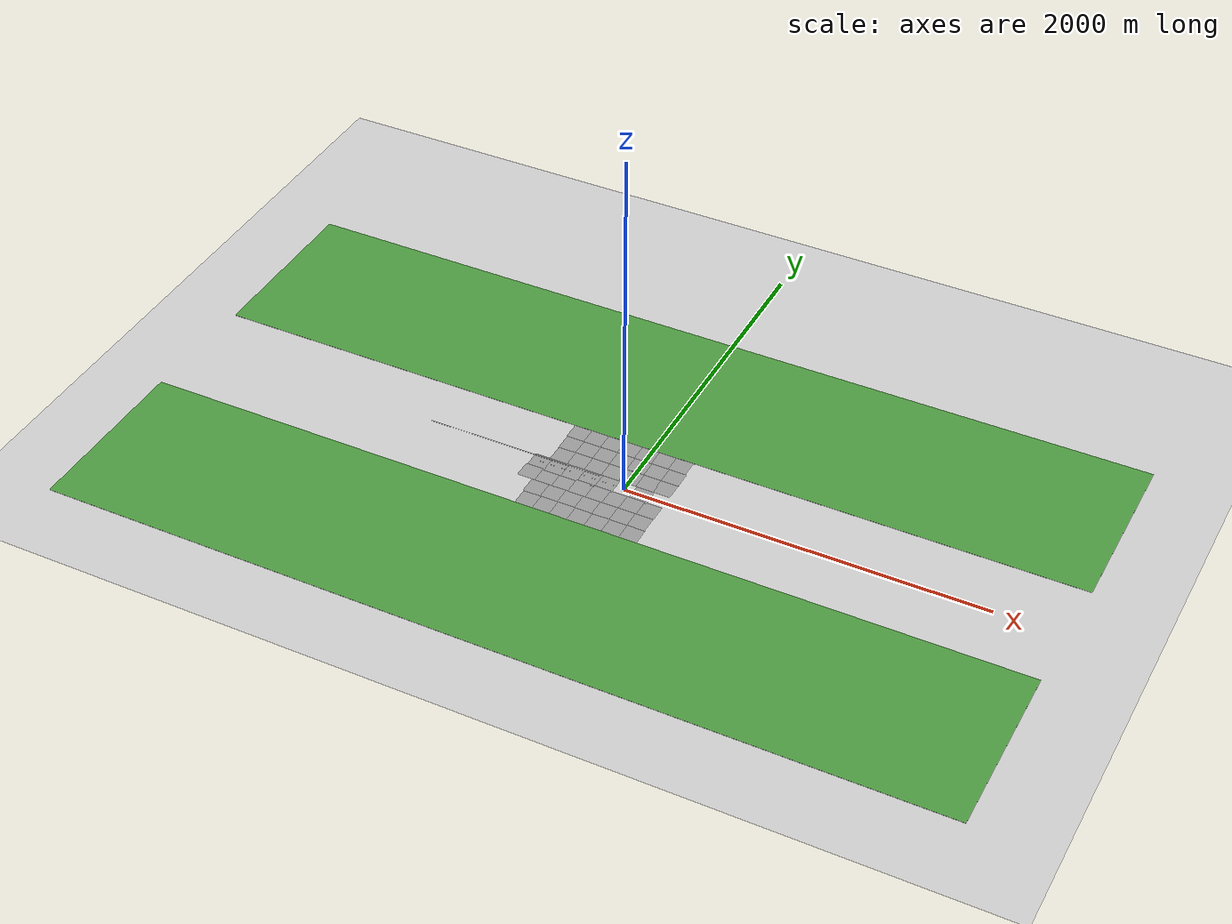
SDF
<sdf version="1.7">
 <world name="default">
  <model name="ground_plane">
   <static>1</static>
   <link name="link">
    <collision name="collision">
     <geometry><plane><normal>0 0 1</normal><size>100 100</size></plane></geometry>
     <surface><friction><ode><mu>100</mu><mu2>50</mu2></ode></friction></surface>
    </collision>
    <visual name="visual">
     <cast_shadows>0</cast_shadows>
     <geometry><plane><normal>0 0 1</normal><size>100 100</size></plane></geometry>
     <material>
      <script><uri>file://media/materials/scripts/gazebo.material</uri><name>Gazebo/Grey</name></script>
     </material>
    </visual>
   </link>
  </model>
  <model name="ground_plane_0">
   <static>1</static>
   <link name="link">
    <collision name="collision">
     <geometry><plane><normal>0 0 1</normal><size>100 100</size></plane></geometry>
     <surface>
      <contact><collide_bitmask>65535</collide_bitmask></contact>
      <friction><ode><mu>100</mu><mu2>50</mu2></ode></friction>
     </surface>
    </collision>
    <visual name="visual">
     <cast_shadows>0</cast_shadows>
     <geometry><plane><normal>0 0 1</normal><size>100 100</size></plane></geometry>
     <material>
      <script><uri>file://media/materials/scripts/gazebo.material</uri><name>Gazebo/Grey</name></script>
     </material>
    </visual>
   </link>
   <pose>98.6274 -0.038647 0 0 -0 0</pose>
  </model>
  <model name="ground_plane_5">
   <static>1</static>
   <link name="link">
    <collision name="collision">
     <geometry><plane><normal>0 0 1</normal><size>100 100</size></plane></geometry>
     <surface>
      <contact><collide_bitmask>65535</collide_bitmask></contact>
      <friction><ode><mu>100</mu><mu2>50</mu2></ode></friction>
     </surface>
    </collision>
    <visual name="visual">
     <cast_shadows>0</cast_shadows>
     <geometry><plane><normal>0 0 1</normal><size>100 100</size></plane></geometry>
     <material>
      <script><uri>file://media/materials/scripts/gazebo.material</uri><name>Gazebo/Grey</name></script>
     </material>
    </visual>
   </link>
   <pose>-99.9513 0.00012 0 0 -0 0</pose>
  </model>
  <model name="ground_plane_6">
   <static>1</static>
   <link name="link">
    <collision name="collision">
     <geometry><plane><normal>0 0 1</normal><size>100 100</size></plane></geometry>
     <surface>
      <contact><collide_bitmask>65535</collide_bitmask></contact>
      <friction><ode><mu>100</mu><mu2>50</mu2></ode></friction>
     </surface>
    </collision>
    <visual name="visual">
     <cast_shadows>0</cast_shadows>
     <geometry><plane><normal>0 0 1</normal><size>100 100</size></plane></geometry>
     <material>
      <script><uri>file://media/materials/scripts/gazebo.material</uri><name>Gazebo/Grey</name></script>
     </material>
    </visual>
   </link>
   <pose>-199.166 0.057176 0 0 -0 0</pose>
  </model>
  <model name="ground_plane_7">
   <static>1</static>
   <link name="link">
    <collision name="collision">
     <geometry><plane><normal>0 0 1</normal><size>100 100</size></plane></geometry>
     <surface>
      <contact><collide_bitmask>65535</collide_bitmask></contact>
      <friction><ode><mu>100</mu><mu2>50</mu2></ode></friction>
     </surface>
    </collision>
    <visual name="visual">
     <cast_shadows>0</cast_shadows>
     <geometry><plane><normal>0 0 1</normal><size>100 100</size></plane></geometry>
     <material>
      <script><uri>file://media/materials/scripts/gazebo.material</uri><name>Gazebo/Grey</name></script>
     </material>
    </visual>
   </link>
   <pose>-297.406 0.070305 0 0 -0 0</pose>
  </model>
  <model name="ground_plane_8">
   <static>1</static>
   <link name="link">
    <collision name="collision">
     <geometry><plane><normal>0 0 1</normal><size>100 100</size></plane></geometry>
     <surface>
      <contact><collide_bitmask>65535</collide_bitmask></contact>
      <friction><ode><mu>100</mu><mu2>50</mu2></ode></friction>
     </surface>
    </collision>
    <visual name="visual">
     <cast_shadows>0</cast_shadows>
     <geometry><plane><normal>0 0 1</normal><size>100 100</size></plane></geometry>
     <material>
      <script><uri>file://media/materials/scripts/gazebo.material</uri><name>Gazebo/Grey</name></script>
     </material>
    </visual>
   </link>
   <pose>-394.201 0.105452 0 0 -0 0</pose>
  </model>
  <model name="ground_plane_9">
   <static>1</static>
   <link name="link">
    <collision name="collision">
     <geometry><plane><normal>0 0 1</normal><size>100 100</size></plane></geometry>
     <surface>
      <contact><collide_bitmask>65535</collide_bitmask></contact>
      <friction><ode><mu>100</mu><mu2>50</mu2></ode></friction>
     </surface>
    </collision>
    <visual name="visual">
     <cast_shadows>0</cast_shadows>
     <geometry><plane><normal>0 0 1</normal><size>100 100</size></plane></geometry>
     <material>
      <script><uri>file://media/materials/scripts/gazebo.material</uri><name>Gazebo/Grey</name></script>
     </material>
    </visual>
   </link>
   <pose>-491.857 0.172089 0 0 -0 0</pose>
  </model>
  <model name="ground_plane_12">
   <static>1</static>
   <link name="link">
    <collision name="collision">
     <geometry><plane><normal>0 0 1</normal><size>100 100</size></plane></geometry>
     <surface>
      <contact><collide_bitmask>65535</collide_bitmask></contact>
      <friction><ode><mu>100</mu><mu2>50</mu2></ode></friction>
     </surface>
    </collision>
    <visual name="visual">
     <cast_shadows>0</cast_shadows>
     <geometry><plane><normal>0 0 1</normal><size>100 100</size></plane></geometry>
     <material>
      <script><uri>file://media/materials/scripts/gazebo.material</uri><name>Gazebo/Grey</name></script>
     </material>
    </visual>
   </link>
   <pose>-11.7816 -89.7768 0 0 -0 0</pose>
  </model>
  <model name="ground_plane_13">
   <static>1</static>
   <link name="link">
    <collision name="collision">
     <geometry><plane><normal>0 0 1</normal><size>100 100</size></plane></geometry>
     <surface>
      <contact><collide_bitmask>65535</collide_bitmask></contact>
      <friction><ode><mu>100</mu><mu2>50</mu2></ode></friction>
     </surface>
    </collision>
    <visual name="visual">
     <cast_shadows>0</cast_shadows>
     <geometry><plane><normal>0 0 1</normal><size>100 100</size></plane></geometry>
     <material>
      <script><uri>file://media/materials/scripts/gazebo.material</uri><name>Gazebo/Grey</name></script>
     </material>
    </visual>
   </link>
   <pose>86.8306 -89.8197 0 0 -0 0</pose>
  </model>
  <model name="ground_plane_14">
   <static>1</static>
   <link name="link">
    <collision name="collision">
     <geometry><plane><normal>0 0 1</normal><size>100 100</size></plane></geometry>
     <surface>
      <contact><collide_bitmask>65535</collide_bitmask></contact>
      <friction><ode><mu>100</mu><mu2>50</mu2></ode></friction>
     </surface>
    </collision>
    <visual name="visual">
     <cast_shadows>0</cast_shadows>
     <geometry><plane><normal>0 0 1</normal><size>100 100</size></plane></geometry>
     <material>
      <script><uri>file://media/materials/scripts/gazebo.material</uri><name>Gazebo/Grey</name></script>
     </material>
    </visual>
   </link>
   <pose>185.841 -89.9297 0 0 -0 0</pose>
  </model>
  <model name="ground_plane_19">
   <static>1</static>
   <link name="link">
    <collision name="collision">
     <geometry><plane><normal>0 0 1</normal><size>100 100</size></plane></geometry>
     <surface>
      <contact><collide_bitmask>65535</collide_bitmask></contact>
      <friction><ode><mu>100</mu><mu2>50</mu2></ode></friction>
     </surface>
    </collision>
    <visual name="visual">
     <cast_shadows>0</cast_shadows>
     <geometry><plane><normal>0 0 1</normal><size>100 100</size></plane></geometry>
     <material>
      <script><uri>file://media/materials/scripts/gazebo.material</uri><name>Gazebo/Grey</name></script>
     </material>
    </visual>
   </link>
   <pose>-108.415 -89.9777 0 0 -0 0</pose>
  </model>
  <model name="ground_plane_20">
   <static>1</static>
   <link name="link">
    <collision name="collision">
     <geometry><plane><normal>0 0 1</normal><size>100 100</size></plane></geometry>
     <surface>
      <contact><collide_bitmask>65535</collide_bitmask></contact>
      <friction><ode><mu>100</mu><mu2>50</mu2></ode></friction>
     </surface>
    </collision>
    <visual name="visual">
     <cast_shadows>0</cast_shadows>
     <geometry><plane><normal>0 0 1</normal><size>100 100</size></plane></geometry>
     <material>
      <script><uri>file://media/materials/scripts/gazebo.material</uri><name>Gazebo/Grey</name></script>
     </material>
    </visual>
   </link>
   <pose>-205.248 -89.9164 0 0 -0 0</pose>
  </model>
  <model name="ground_plane_21">
   <static>1</static>
   <link name="link">
    <collision name="collision">
     <geometry><plane><normal>0 0 1</normal><size>100 100</size></plane></geometry>
     <surface>
      <contact><collide_bitmask>65535</collide_bitmask></contact>
      <friction><ode><mu>100</mu><mu2>50</mu2></ode></friction>
     </surface>
    </collision>
    <visual name="visual">
     <cast_shadows>0</cast_shadows>
     <geometry><plane><normal>0 0 1</normal><size>100 100</size></plane></geometry>
     <material>
      <script><uri>file://media/materials/scripts/gazebo.material</uri><name>Gazebo/Grey</name></script>
     </material>
    </visual>
   </link>
   <pose>-301.464 -90.0316 0 0 -0 0</pose>
  </model>
  <model name="ground_plane_22">
   <static>1</static>
   <link name="link">
    <collision name="collision">
     <geometry><plane><normal>0 0 1</normal><size>100 100</size></plane></geometry>
     <surface>
      <contact><collide_bitmask>65535</collide_bitmask></contact>
      <friction><ode><mu>100</mu><mu2>50</mu2></ode></friction>
     </surface>
    </collision>
    <visual name="visual">
     <cast_shadows>0</cast_shadows>
     <geometry><plane><normal>0 0 1</normal><size>100 100</size></plane></geometry>
     <material>
      <script><uri>file://media/materials/scripts/gazebo.material</uri><name>Gazebo/Grey</name></script>
     </material>
    </visual>
   </link>
   <pose>-399.702 -89.9287 0 0 -0 0</pose>
  </model>
  <model name="ground_plane_23">
   <static>1</static>
   <link name="link">
    <collision name="collision">
     <geometry><plane><normal>0 0 1</normal><size>100 100</size></plane></geometry>
     <surface>
      <contact><collide_bitmask>65535</collide_bitmask></contact>
      <friction><ode><mu>100</mu><mu2>50</mu2></ode></friction>
     </surface>
    </collision>
    <visual name="visual">
     <cast_shadows>0</cast_shadows>
     <geometry><plane><normal>0 0 1</normal><size>100 100</size></plane></geometry>
     <material>
      <script><uri>file://media/materials/scripts/gazebo.material</uri><name>Gazebo/Grey</name></script>
     </material>
    </visual>
   </link>
   <pose>-498.907 -90.1441 0 0 -0 0</pose>
  </model>
  <model name="ground_plane_29">
   <static>1</static>
   <link name="link">
    <collision name="collision">
     <geometry><plane><normal>0 0 1</normal><size>100 100</size></plane></geometry>
     <surface>
      <contact><collide_bitmask>65535</collide_bitmask></contact>
      <friction><ode><mu>100</mu><mu2>50</mu2></ode></friction>
     </surface>
    </collision>
    <visual name="visual">
     <cast_shadows>0</cast_shadows>
     <geometry><plane><normal>0 0 1</normal><size>100 100</size></plane></geometry>
     <material>
      <script><uri>file://media/materials/scripts/gazebo.material</uri><name>Gazebo/Grey</name></script>
     </material>
    </visual>
   </link>
   <pose>185.337 100.068 0 0 -0 0</pose>
  </model>
  <model name="ground_plane_30">
   <static>1</static>
   <link name="link">
    <collision name="collision">
     <geometry><plane><normal>0 0 1</normal><size>100 100</size></plane></geometry>
     <surface>
      <contact><collide_bitmask>65535</collide_bitmask></contact>
      <friction><ode><mu>100</mu><mu2>50</mu2></ode></friction>
     </surface>
    </collision>
    <visual name="visual">
     <cast_shadows>0</cast_shadows>
     <geometry><plane><normal>0 0 1</normal><size>100 100</size></plane></geometry>
     <material>
      <script><uri>file://media/materials/scripts/gazebo.material</uri><name>Gazebo/Grey</name></script>
     </material>
    </visual>
   </link>
   <pose>90.569 99.9304 0 0 -0 0</pose>
  </model>
  <model name="ground_plane_31">
   <static>1</static>
   <link name="link">
    <collision name="collision">
     <geometry><plane><normal>0 0 1</normal><size>100 100</size></plane></geometry>
     <surface>
      <contact><collide_bitmask>65535</collide_bitmask></contact>
      <friction><ode><mu>100</mu><mu2>50</mu2></ode></friction>
     </surface>
    </collision>
    <visual name="visual">
     <cast_shadows>0</cast_shadows>
     <geometry><plane><normal>0 0 1</normal><size>100 100</size></plane></geometry>
     <material>
      <script><uri>file://media/materials/scripts/gazebo.material</uri><name>Gazebo/Grey</name></script>
     </material>
    </visual>
   </link>
   <pose>-9.31072 99.9603 0 0 -0 0</pose>
  </model>
  <model name="ground_plane_32">
   <static>1</static>
   <link name="link">
    <collision name="collision">
     <geometry><plane><normal>0 0 1</normal><size>100 100</size></plane></geometry>
     <surface>
      <contact><collide_bitmask>65535</collide_bitmask></contact>
      <friction><ode><mu>100</mu><mu2>50</mu2></ode></friction>
     </surface>
    </collision>
    <visual name="visual">
     <cast_shadows>0</cast_shadows>
     <geometry><plane><normal>0 0 1</normal><size>100 100</size></plane></geometry>
     <material>
      <script><uri>file://media/materials/scripts/gazebo.material</uri><name>Gazebo/Grey</name></script>
     </material>
    </visual>
   </link>
   <pose>-108.837 99.8776 0 0 -0 0</pose>
  </model>
  <model name="ground_plane_33">
   <static>1</static>
   <link name="link">
    <collision name="collision">
     <geometry><plane><normal>0 0 1</normal><size>100 100</size></plane></geometry>
     <surface>
      <contact><collide_bitmask>65535</collide_bitmask></contact>
      <friction><ode><mu>100</mu><mu2>50</mu2></ode></friction>
     </surface>
    </collision>
    <visual name="visual">
     <cast_shadows>0</cast_shadows>
     <geometry><plane><normal>0 0 1</normal><size>100 100</size></plane></geometry>
     <material>
      <script><uri>file://media/materials/scripts/gazebo.material</uri><name>Gazebo/Grey</name></script>
     </material>
    </visual>
   </link>
   <pose>-208.514 99.9253 0 0 -0 0</pose>
  </model>
  <model name="ground_plane_34">
   <static>1</static>
   <link name="link">
    <collision name="collision">
     <geometry><plane><normal>0 0 1</normal><size>100 100</size></plane></geometry>
     <surface>
      <contact><collide_bitmask>65535</collide_bitmask></contact>
      <friction><ode><mu>100</mu><mu2>50</mu2></ode></friction>
     </surface>
    </collision>
    <visual name="visual">
     <cast_shadows>0</cast_shadows>
     <geometry><plane><normal>0 0 1</normal><size>100 100</size></plane></geometry>
     <material>
      <script><uri>file://media/materials/scripts/gazebo.material</uri><name>Gazebo/Grey</name></script>
     </material>
    </visual>
   </link>
   <pose>-308.035 99.975 0 0 -0 0</pose>
  </model>
  <model name="ground_plane_35">
   <static>1</static>
   <link name="link">
    <collision name="collision">
     <geometry><plane><normal>0 0 1</normal><size>100 100</size></plane></geometry>
     <surface>
      <contact><collide_bitmask>65535</collide_bitmask></contact>
      <friction><ode><mu>100</mu><mu2>50</mu2></ode></friction>
     </surface>
    </collision>
    <visual name="visual">
     <cast_shadows>0</cast_shadows>
     <geometry><plane><normal>0 0 1</normal><size>100 100</size></plane></geometry>
     <material>
      <script><uri>file://media/materials/scripts/gazebo.material</uri><name>Gazebo/Grey</name></script>
     </material>
    </visual>
   </link>
   <pose>-407.885 99.9929 0 0 -0 0</pose>
  </model>
  <model name="ground_plane_50">
   <static>1</static>
   <link name="link">
    <collision name="collision">
     <geometry><plane><normal>0 0 1</normal><size>100 100</size></plane></geometry>
     <surface>
      <contact><collide_bitmask>65535</collide_bitmask></contact>
      <friction><ode><mu>100</mu><mu2>50</mu2></ode></friction>
     </surface>
    </collision>
    <visual name="visual">
     <cast_shadows>0</cast_shadows>
     <geometry><plane><normal>0 0 1</normal><size>100 100</size></plane></geometry>
     <material>
      <script><uri>file://media/materials/scripts/gazebo.material</uri><name>Gazebo/Grey</name></script>
     </material>
    </visual>
   </link>
   <pose>183.284 -189.234 0 0 -0 0</pose>
  </model>
  <model name="ground_plane_51">
   <static>1</static>
   <link name="link">
    <collision name="collision">
     <geometry><plane><normal>0 0 1</normal><size>100 100</size></plane></geometry>
     <surface>
      <contact><collide_bitmask>65535</collide_bitmask></contact>
      <friction><ode><mu>100</mu><mu2>50</mu2></ode></friction>
     </surface>
    </collision>
    <visual name="visual">
     <cast_shadows>0</cast_shadows>
     <geometry><plane><normal>0 0 1</normal><size>100 100</size></plane></geometry>
     <material>
      <script><uri>file://media/materials/scripts/gazebo.material</uri><name>Gazebo/Grey</name></script>
     </material>
    </visual>
   </link>
   <pose>83.2685 -189.583 0 0 -0 0</pose>
  </model>
  <model name="ground_plane_52">
   <static>1</static>
   <link name="link">
    <collision name="collision">
     <geometry><plane><normal>0 0 1</normal><size>100 100</size></plane></geometry>
     <surface>
      <contact><collide_bitmask>65535</collide_bitmask></contact>
      <friction><ode><mu>100</mu><mu2>50</mu2></ode></friction>
     </surface>
    </collision>
    <visual name="visual">
     <cast_shadows>0</cast_shadows>
     <geometry><plane><normal>0 0 1</normal><size>100 100</size></plane></geometry>
     <material>
      <script><uri>file://media/materials/scripts/gazebo.material</uri><name>Gazebo/Grey</name></script>
     </material>
    </visual>
   </link>
   <pose>-16.2945 -189.701 0 0 -0 0</pose>
  </model>
  <model name="ground_plane_53">
   <static>1</static>
   <link name="link">
    <collision name="collision">
     <geometry><plane><normal>0 0 1</normal><size>100 100</size></plane></geometry>
     <surface>
      <contact><collide_bitmask>65535</collide_bitmask></contact>
      <friction><ode><mu>100</mu><mu2>50</mu2></ode></friction>
     </surface>
    </collision>
    <visual name="visual">
     <cast_shadows>0</cast_shadows>
     <geometry><plane><normal>0 0 1</normal><size>100 100</size></plane></geometry>
     <material>
      <script><uri>file://media/materials/scripts/gazebo.material</uri><name>Gazebo/Grey</name></script>
     </material>
    </visual>
   </link>
   <pose>-115.105 -189.648 0 0 -0 0</pose>
  </model>
  <model name="ground_plane_54">
   <static>1</static>
   <link name="link">
    <collision name="collision">
     <geometry><plane><normal>0 0 1</normal><size>100 100</size></plane></geometry>
     <surface>
      <contact><collide_bitmask>65535</collide_bitmask></contact>
      <friction><ode><mu>100</mu><mu2>50</mu2></ode></friction>
     </surface>
    </collision>
    <visual name="visual">
     <cast_shadows>0</cast_shadows>
     <geometry><plane><normal>0 0 1</normal><size>100 100</size></plane></geometry>
     <material>
      <script><uri>file://media/materials/scripts/gazebo.material</uri><name>Gazebo/Grey</name></script>
     </material>
    </visual>
   </link>
   <pose>-214.806 -189.798 0 0 -0 0</pose>
  </model>
  <model name="ground_plane_55">
   <static>1</static>
   <link name="link">
    <collision name="collision">
     <geometry><plane><normal>0 0 1</normal><size>100 100</size></plane></geometry>
     <surface>
      <contact><collide_bitmask>65535</collide_bitmask></contact>
      <friction><ode><mu>100</mu><mu2>50</mu2></ode></friction>
     </surface>
    </collision>
    <visual name="visual">
     <cast_shadows>0</cast_shadows>
     <geometry><plane><normal>0 0 1</normal><size>100 100</size></plane></geometry>
     <material>
      <script><uri>file://media/materials/scripts/gazebo.material</uri><name>Gazebo/Grey</name></script>
     </material>
    </visual>
   </link>
   <pose>-314.361 -189.77 0 0 -0 0</pose>
  </model>
  <model name="ground_plane_56">
   <static>1</static>
   <link name="link">
    <collision name="collision">
     <geometry><plane><normal>0 0 1</normal><size>100 100</size></plane></geometry>
     <surface>
      <contact><collide_bitmask>65535</collide_bitmask></contact>
      <friction><ode><mu>100</mu><mu2>50</mu2></ode></friction>
     </surface>
    </collision>
    <visual name="visual">
     <cast_shadows>0</cast_shadows>
     <geometry><plane><normal>0 0 1</normal><size>100 100</size></plane></geometry>
     <material>
      <script><uri>file://media/materials/scripts/gazebo.material</uri><name>Gazebo/Grey</name></script>
     </material>
    </visual>
   </link>
   <pose>-413.182 -189.946 0 0 -0 0</pose>
  </model>
  <model name="ground_plane_65">
   <static>1</static>
   <link name="link">
    <collision name="collision">
     <geometry><plane><normal>0 0 1</normal><size>100 100</size></plane></geometry>
     <surface>
      <contact><collide_bitmask>65535</collide_bitmask></contact>
      <friction><ode><mu>100</mu><mu2>50</mu2></ode></friction>
     </surface>
    </collision>
    <visual name="visual">
     <cast_shadows>0</cast_shadows>
     <geometry><plane><normal>0 0 1</normal><size>100 100</size></plane></geometry>
     <material>
      <script><uri>file://media/materials/scripts/gazebo.material</uri><name>Gazebo/Grey</name></script>
     </material>
    </visual>
   </link>
   <pose>186.219 199.825 0 0 -0 0</pose>
  </model>
  <model name="ground_plane_66">
   <static>1</static>
   <link name="link">
    <collision name="collision">
     <geometry><plane><normal>0 0 1</normal><size>100 100</size></plane></geometry>
     <surface>
      <contact><collide_bitmask>65535</collide_bitmask></contact>
      <friction><ode><mu>100</mu><mu2>50</mu2></ode></friction>
     </surface>
    </collision>
    <visual name="visual">
     <cast_shadows>0</cast_shadows>
     <geometry><plane><normal>0 0 1</normal><size>100 100</size></plane></geometry>
     <material>
      <script><uri>file://media/materials/scripts/gazebo.material</uri><name>Gazebo/Grey</name></script>
     </material>
    </visual>
   </link>
   <pose>86.9116 199.899 0 0 -0 0</pose>
  </model>
  <model name="ground_plane_67">
   <static>1</static>
   <link name="link">
    <collision name="collision">
     <geometry><plane><normal>0 0 1</normal><size>100 100</size></plane></geometry>
     <surface>
      <contact><collide_bitmask>65535</collide_bitmask></contact>
      <friction><ode><mu>100</mu><mu2>50</mu2></ode></friction>
     </surface>
    </collision>
    <visual name="visual">
     <cast_shadows>0</cast_shadows>
     <geometry><plane><normal>0 0 1</normal><size>100 100</size></plane></geometry>
     <material>
      <script><uri>file://media/materials/scripts/gazebo.material</uri><name>Gazebo/Grey</name></script>
     </material>
    </visual>
   </link>
   <pose>-12.5684 199.977 0 0 -0 0</pose>
  </model>
  <model name="ground_plane_68">
   <static>1</static>
   <link name="link">
    <collision name="collision">
     <geometry><plane><normal>0 0 1</normal><size>100 100</size></plane></geometry>
     <surface>
      <contact><collide_bitmask>65535</collide_bitmask></contact>
      <friction><ode><mu>100</mu><mu2>50</mu2></ode></friction>
     </surface>
    </collision>
    <visual name="visual">
     <cast_shadows>0</cast_shadows>
     <geometry><plane><normal>0 0 1</normal><size>100 100</size></plane></geometry>
     <material>
      <script><uri>file://media/materials/scripts/gazebo.material</uri><name>Gazebo/Grey</name></script>
     </material>
    </visual>
   </link>
   <pose>-112.191 199.785 0 0 -0 0</pose>
  </model>
  <model name="ground_plane_69">
   <static>1</static>
   <link name="link">
    <collision name="collision">
     <geometry><plane><normal>0 0 1</normal><size>100 100</size></plane></geometry>
     <surface>
      <contact><collide_bitmask>65535</collide_bitmask></contact>
      <friction><ode><mu>100</mu><mu2>50</mu2></ode></friction>
     </surface>
    </collision>
    <visual name="visual">
     <cast_shadows>0</cast_shadows>
     <geometry><plane><normal>0 0 1</normal><size>100 100</size></plane></geometry>
     <material>
      <script><uri>file://media/materials/scripts/gazebo.material</uri><name>Gazebo/Grey</name></script>
     </material>
    </visual>
   </link>
   <pose>-211.401 199.564 0 0 -0 0</pose>
  </model>
  <model name="ground_plane_70">
   <static>1</static>
   <link name="link">
    <collision name="collision">
     <geometry><plane><normal>0 0 1</normal><size>100 100</size></plane></geometry>
     <surface>
      <contact><collide_bitmask>65535</collide_bitmask></contact>
      <friction><ode><mu>100</mu><mu2>50</mu2></ode></friction>
     </surface>
    </collision>
    <visual name="visual">
     <cast_shadows>0</cast_shadows>
     <geometry><plane><normal>0 0 1</normal><size>100 100</size></plane></geometry>
     <material>
      <script><uri>file://media/materials/scripts/gazebo.material</uri><name>Gazebo/Grey</name></script>
     </material>
    </visual>
   </link>
   <pose>-311.068 199.904 0 0 -0 0</pose>
  </model>
  <model name="ground_plane_71">
   <static>1</static>
   <link name="link">
    <collision name="collision">
     <geometry><plane><normal>0 0 1</normal><size>100 100</size></plane></geometry>
     <surface>
      <contact><collide_bitmask>65535</collide_bitmask></contact>
      <friction><ode><mu>100</mu><mu2>50</mu2></ode></friction>
     </surface>
    </collision>
    <visual name="visual">
     <cast_shadows>0</cast_shadows>
     <geometry><plane><normal>0 0 1</normal><size>100 100</size></plane></geometry>
     <material>
      <script><uri>file://media/materials/scripts/gazebo.material</uri><name>Gazebo/Grey</name></script>
     </material>
    </visual>
   </link>
   <pose>-409.994 199.617 0 0 -0 0</pose>
  </model>
  <model name="ground_plane_214">
   <static>1</static>
   <link name="link">
    <collision name="collision">
     <geometry><plane><normal>0 0 1</normal><size>100 100</size></plane></geometry>
     <surface>
      <contact><collide_bitmask>65535</collide_bitmask></contact>
      <friction><ode><mu>100</mu><mu2>50</mu2></ode></friction>
     </surface>
    </collision>
    <visual name="visual">
     <cast_shadows>0</cast_shadows>
     <geometry><plane><normal>0 0 1</normal><size>100 100</size></plane></geometry>
     <material>
      <script><uri>file://media/materials/scripts/gazebo.material</uri><name>Gazebo/Grey</name></script>
     </material>
    </visual>
   </link>
   <pose>186.569 -288.503 0 0 -0 0</pose>
  </model>
  <model name="ground_plane_215">
   <static>1</static>
   <link name="link">
    <collision name="collision">
     <geometry><plane><normal>0 0 1</normal><size>100 100</size></plane></geometry>
     <surface>
      <contact><collide_bitmask>65535</collide_bitmask></contact>
      <friction><ode><mu>100</mu><mu2>50</mu2></ode></friction>
     </surface>
    </collision>
    <visual name="visual">
     <cast_shadows>0</cast_shadows>
     <geometry><plane><normal>0 0 1</normal><size>100 100</size></plane></geometry>
     <material>
      <script><uri>file://media/materials/scripts/gazebo.material</uri><name>Gazebo/Grey</name></script>
     </material>
    </visual>
   </link>
   <pose>87.4626 -287.786 0 0 -0 0</pose>
  </model>
  <model name="ground_plane_216">
   <static>1</static>
   <link name="link">
    <collision name="collision">
     <geometry><plane><normal>0 0 1</normal><size>100 100</size></plane></geometry>
     <surface>
      <contact><collide_bitmask>65535</collide_bitmask></contact>
      <friction><ode><mu>100</mu><mu2>50</mu2></ode></friction>
     </surface>
    </collision>
    <visual name="visual">
     <cast_shadows>0</cast_shadows>
     <geometry><plane><normal>0 0 1</normal><size>100 100</size></plane></geometry>
     <material>
      <script><uri>file://media/materials/scripts/gazebo.material</uri><name>Gazebo/Grey</name></script>
     </material>
    </visual>
   </link>
   <pose>-11.1913 -287.666 0 0 -0 0</pose>
  </model>
  <model name="ground_plane_217">
   <static>1</static>
   <link name="link">
    <collision name="collision">
     <geometry><plane><normal>0 0 1</normal><size>100 100</size></plane></geometry>
     <surface>
      <contact><collide_bitmask>65535</collide_bitmask></contact>
      <friction><ode><mu>100</mu><mu2>50</mu2></ode></friction>
     </surface>
    </collision>
    <visual name="visual">
     <cast_shadows>0</cast_shadows>
     <geometry><plane><normal>0 0 1</normal><size>100 100</size></plane></geometry>
     <material>
      <script><uri>file://media/materials/scripts/gazebo.material</uri><name>Gazebo/Grey</name></script>
     </material>
    </visual>
   </link>
   <pose>-110.888 -287.8 0 0 -0 0</pose>
  </model>
  <model name="ground_plane_218">
   <static>1</static>
   <link name="link">
    <collision name="collision">
     <geometry><plane><normal>0 0 1</normal><size>100 100</size></plane></geometry>
     <surface>
      <contact><collide_bitmask>65535</collide_bitmask></contact>
      <friction><ode><mu>100</mu><mu2>50</mu2></ode></friction>
     </surface>
    </collision>
    <visual name="visual">
     <cast_shadows>0</cast_shadows>
     <geometry><plane><normal>0 0 1</normal><size>100 100</size></plane></geometry>
     <material>
      <script><uri>file://media/materials/scripts/gazebo.material</uri><name>Gazebo/Grey</name></script>
     </material>
    </visual>
   </link>
   <pose>-209.891 -287.8 0 0 -0 0</pose>
  </model>
  <model name="ground_plane_219">
   <static>1</static>
   <link name="link">
    <collision name="collision">
     <geometry><plane><normal>0 0 1</normal><size>100 100</size></plane></geometry>
     <surface>
      <contact><collide_bitmask>65535</collide_bitmask></contact>
      <friction><ode><mu>100</mu><mu2>50</mu2></ode></friction>
     </surface>
    </collision>
    <visual name="visual">
     <cast_shadows>0</cast_shadows>
     <geometry><plane><normal>0 0 1</normal><size>100 100</size></plane></geometry>
     <material>
      <script><uri>file://media/materials/scripts/gazebo.material</uri><name>Gazebo/Grey</name></script>
     </material>
    </visual>
   </link>
   <pose>-309.01 -287.459 0 0 -0 0</pose>
  </model>
  <model name="ground_plane_220">
   <static>1</static>
   <link name="link">
    <collision name="collision">
     <geometry><plane><normal>0 0 1</normal><size>100 100</size></plane></geometry>
     <surface>
      <contact><collide_bitmask>65535</collide_bitmask></contact>
      <friction><ode><mu>100</mu><mu2>50</mu2></ode></friction>
     </surface>
    </collision>
    <visual name="visual">
     <cast_shadows>0</cast_shadows>
     <geometry><plane><normal>0 0 1</normal><size>100 100</size></plane></geometry>
     <material>
      <script><uri>file://media/materials/scripts/gazebo.material</uri><name>Gazebo/Grey</name></script>
     </material>
    </visual>
   </link>
   <pose>-407.049 -287.459 0 0 -0 0</pose>
  </model>
  <model name="ground_plane_254">
   <static>1</static>
   <link name="link">
    <collision name="collision">
     <geometry><plane><normal>0 0 1</normal><size>100 100</size></plane></geometry>
     <surface>
      <contact><collide_bitmask>65535</collide_bitmask></contact>
      <friction><ode><mu>100</mu><mu2>50</mu2></ode></friction>
     </surface>
    </collision>
    <visual name="visual">
     <cast_shadows>0</cast_shadows>
     <geometry><plane><normal>0 0 1</normal><size>100 100</size></plane></geometry>
     <material>
      <script><uri>file://media/materials/scripts/gazebo.material</uri><name>Gazebo/Grey</name></script>
     </material>
    </visual>
   </link>
   <pose>179.437 298.811 0 0 -0 0</pose>
  </model>
  <model name="ground_plane_255">
   <static>1</static>
   <link name="link">
    <collision name="collision">
     <geometry><plane><normal>0 0 1</normal><size>100 100</size></plane></geometry>
     <surface>
      <contact><collide_bitmask>65535</collide_bitmask></contact>
      <friction><ode><mu>100</mu><mu2>50</mu2></ode></friction>
     </surface>
    </collision>
    <visual name="visual">
     <cast_shadows>0</cast_shadows>
     <geometry><plane><normal>0 0 1</normal><size>100 100</size></plane></geometry>
     <material>
      <script><uri>file://media/materials/scripts/gazebo.material</uri><name>Gazebo/Grey</name></script>
     </material>
    </visual>
   </link>
   <pose>79.7556 298.866 0 0 -0 0</pose>
  </model>
  <model name="ground_plane_256">
   <static>1</static>
   <link name="link">
    <collision name="collision">
     <geometry><plane><normal>0 0 1</normal><size>100 100</size></plane></geometry>
     <surface>
      <contact><collide_bitmask>65535</collide_bitmask></contact>
      <friction><ode><mu>100</mu><mu2>50</mu2></ode></friction>
     </surface>
    </collision>
    <visual name="visual">
     <cast_shadows>0</cast_shadows>
     <geometry><plane><normal>0 0 1</normal><size>100 100</size></plane></geometry>
     <material>
      <script><uri>file://media/materials/scripts/gazebo.material</uri><name>Gazebo/Grey</name></script>
     </material>
    </visual>
   </link>
   <pose>-19.1712 298.861 0 0 -0 0</pose>
  </model>
  <model name="ground_plane_257">
   <static>1</static>
   <link name="link">
    <collision name="collision">
     <geometry><plane><normal>0 0 1</normal><size>100 100</size></plane></geometry>
     <surface>
      <contact><collide_bitmask>65535</collide_bitmask></contact>
      <friction><ode><mu>100</mu><mu2>50</mu2></ode></friction>
     </surface>
    </collision>
    <visual name="visual">
     <cast_shadows>0</cast_shadows>
     <geometry><plane><normal>0 0 1</normal><size>100 100</size></plane></geometry>
     <material>
      <script><uri>file://media/materials/scripts/gazebo.material</uri><name>Gazebo/Grey</name></script>
     </material>
    </visual>
   </link>
   <pose>-117.388 298.648 0 0 -0 0</pose>
  </model>
  <model name="ground_plane_258">
   <static>1</static>
   <link name="link">
    <collision name="collision">
     <geometry><plane><normal>0 0 1</normal><size>100 100</size></plane></geometry>
     <surface>
      <contact><collide_bitmask>65535</collide_bitmask></contact>
      <friction><ode><mu>100</mu><mu2>50</mu2></ode></friction>
     </surface>
    </collision>
    <visual name="visual">
     <cast_shadows>0</cast_shadows>
     <geometry><plane><normal>0 0 1</normal><size>100 100</size></plane></geometry>
     <material>
      <script><uri>file://media/materials/scripts/gazebo.material</uri><name>Gazebo/Grey</name></script>
     </material>
    </visual>
   </link>
   <pose>-215.676 298.628 0 0 -0 0</pose>
  </model>
  <model name="ground_plane_259">
   <static>1</static>
   <link name="link">
    <collision name="collision">
     <geometry><plane><normal>0 0 1</normal><size>100 100</size></plane></geometry>
     <surface>
      <contact><collide_bitmask>65535</collide_bitmask></contact>
      <friction><ode><mu>100</mu><mu2>50</mu2></ode></friction>
     </surface>
    </collision>
    <visual name="visual">
     <cast_shadows>0</cast_shadows>
     <geometry><plane><normal>0 0 1</normal><size>100 100</size></plane></geometry>
     <material>
      <script><uri>file://media/materials/scripts/gazebo.material</uri><name>Gazebo/Grey</name></script>
     </material>
    </visual>
   </link>
   <pose>-315.03 299.117 0 0 -0 0</pose>
  </model>
  <model name="ground_plane_260">
   <static>1</static>
   <link name="link">
    <collision name="collision">
     <geometry><plane><normal>0 0 1</normal><size>100 100</size></plane></geometry>
     <surface>
      <contact><collide_bitmask>65535</collide_bitmask></contact>
      <friction><ode><mu>100</mu><mu2>50</mu2></ode></friction>
     </surface>
    </collision>
    <visual name="visual">
     <cast_shadows>0</cast_shadows>
     <geometry><plane><normal>0 0 1</normal><size>100 100</size></plane></geometry>
     <material>
      <script><uri>file://media/materials/scripts/gazebo.material</uri><name>Gazebo/Grey</name></script>
     </material>
    </visual>
   </link>
   <pose>-414.592 299.578 0 0 -0 0</pose>
  </model>
  <model name="runway_side_1km_thin_clone_0">
   <link name="Wall_0">
    <pose>-361.004 -1.08248 0 0 -0 3.14159</pose>
    <inertial>
     <inertia><ixx>0</ixx><ixy>0</ixy><ixz>0</ixz><iyy>0</iyy><iyz>0</iyz><izz>0</izz></inertia>
     <mass>0</mass>
    </inertial>
    <visual name="Wall_0_Visual">
     <pose>0 0 1.25 0 -0 0</pose>
     <geometry><box><size>1000 2.8594 1</size></box></geometry>
     <material>
      <script><uri>file://media/materials/scripts/gazebo.material</uri><name>Gazebo/Grey</name></script>
      <ambient>1 1 1 1</ambient>
      <shader type="pixel"/>
     </material>
     <meta><layer>0</layer></meta>
    </visual>
    <collision name="Wall_0_Collision">
     <pose>0 0 1.25 0 -0 0</pose>
     <geometry><box><size>1000 2.8594 1</size></box></geometry>
     <surface>
      <friction>
       <ode><mu>1</mu><mu2>1</mu2><fdir1>0 0 0</fdir1><slip1>0</slip1><slip2>0</slip2></ode>
       <torsional>
        <coefficient>1</coefficient>
        <patch_radius>0</patch_radius>
        <surface_radius>0</surface_radius>
        <use_patch_radius>1</use_patch_radius>
        <ode><slip>0</slip></ode>
       </torsional>
      </friction>
      <bounce><restitution_coefficient>0</restitution_coefficient><threshold>1e+06</threshold></bounce>
      <contact>
       <collide_without_contact>0</collide_without_contact>
       <collide_without_contact_bitmask>1</collide_without_contact_bitmask>
       <collide_bitmask>1</collide_bitmask>
       <ode>
        <soft_cfm>0</soft_cfm>
        <soft_erp>0.2</soft_erp>
        <kp>1e+13</kp>
        <kd>1</kd>
        <max_vel>0.01</max_vel>
        <min_depth>0</min_depth>
       </ode>
       <bullet>
        <split_impulse>1</split_impulse>
        <split_impulse_penetration_threshold>-0.01</split_impulse_penetration_threshold>
        <soft_cfm>0</soft_cfm>
        <soft_erp>0.2</soft_erp>
        <kp>1e+13</kp>
        <kd>1</kd>
       </bullet>
      </contact>
     </surface>
    </collision>
   </link>
   <static>1</static>
   <pose>-300 34 5 0 -0 0</pose>
  </model>
  <model name="runway_middle_strip_120ft_clone_14">
   <pose>-479.64 2 5 0 -0 0</pose>
   <link name="Wall_4">
    <collision name="Wall_4_Collision">
     <geometry><box><size>37.426 1 1</size></box></geometry>
     <pose>0 0 0.05 0 -0 0</pose>
    </collision>
    <visual name="Wall_4_Visual">
     <pose>0 0 0.05 0 -0 0</pose>
     <geometry><box><size>37.426 1 1</size></box></geometry>
     <material>
      <script><uri>file://media/materials/scripts/gazebo.material</uri><name>Gazebo/Grey</name></script>
      <ambient>1 1 1 1</ambient>
     </material>
     <meta><layer>0</layer></meta>
    </visual>
    <pose>0 -2.48 0 0 -0 0</pose>
   </link>
   <static>1</static>
  </model>
  <model name="runway_middle_strip_120ft_clone_15">
   <pose>-418.68 2 5 0 -0 0</pose>
   <link name="Wall_4">
    <collision name="Wall_4_Collision">
     <geometry><box><size>37.426 1 1</size></box></geometry>
     <pose>0 0 0.05 0 -0 0</pose>
    </collision>
    <visual name="Wall_4_Visual">
     <pose>0 0 0.05 0 -0 0</pose>
     <geometry><box><size>37.426 1 1</size></box></geometry>
     <material>
      <script><uri>file://media/materials/scripts/gazebo.material</uri><name>Gazebo/Grey</name></script>
      <ambient>1 1 1 1</ambient>
     </material>
     <meta><layer>0</layer></meta>
    </visual>
    <pose>0 -2.48 0 0 -0 0</pose>
   </link>
   <static>1</static>
  </model>
  <model name="runway_middle_strip_120ft_clone_16">
   <pose>-357.72 2 5 0 -0 0</pose>
   <link name="Wall_4">
    <collision name="Wall_4_Collision">
     <geometry><box><size>37.426 1 1</size></box></geometry>
     <pose>0 0 0.05 0 -0 0</pose>
    </collision>
    <visual name="Wall_4_Visual">
     <pose>0 0 0.05 0 -0 0</pose>
     <geometry><box><size>37.426 1 1</size></box></geometry>
     <material>
      <script><uri>file://media/materials/scripts/gazebo.material</uri><name>Gazebo/Grey</name></script>
      <ambient>1 1 1 1</ambient>
     </material>
     <meta><layer>0</layer></meta>
    </visual>
    <pose>0 -2.48 0 0 -0 0</pose>
   </link>
   <static>1</static>
  </model>
  <model name="runway_middle_strip_120ft_clone_17">
   <pose>-296.76 2 5 0 -0 0</pose>
   <link name="Wall_4">
    <collision name="Wall_4_Collision">
     <geometry><box><size>37.426 1 1</size></box></geometry>
     <pose>0 0 0.05 0 -0 0</pose>
    </collision>
    <visual name="Wall_4_Visual">
     <pose>0 0 0.05 0 -0 0</pose>
     <geometry><box><size>37.426 1 1</size></box></geometry>
     <material>
      <script><uri>file://media/materials/scripts/gazebo.material</uri><name>Gazebo/Grey</name></script>
      <ambient>1 1 1 1</ambient>
     </material>
     <meta><layer>0</layer></meta>
    </visual>
    <pose>0 -2.48 0 0 -0 0</pose>
   </link>
   <static>1</static>
  </model>
  <model name="runway_middle_strip_120ft_clone_18">
   <pose>-235.8 2 5 0 -0 0</pose>
   <link name="Wall_4">
    <collision name="Wall_4_Collision">
     <geometry><box><size>37.426 1 1</size></box></geometry>
     <pose>0 0 0.05 0 -0 0</pose>
    </collision>
    <visual name="Wall_4_Visual">
     <pose>0 0 0.05 0 -0 0</pose>
     <geometry><box><size>37.426 1 1</size></box></geometry>
     <material>
      <script><uri>file://media/materials/scripts/gazebo.material</uri><name>Gazebo/Grey</name></script>
      <ambient>1 1 1 1</ambient>
     </material>
     <meta><layer>0</layer></meta>
    </visual>
    <pose>0 -2.48 0 0 -0 0</pose>
   </link>
   <static>1</static>
  </model>
  <model name="runway_middle_strip_120ft_clone_19">
   <pose>-174.84 2 5 0 -0 0</pose>
   <link name="Wall_4">
    <collision name="Wall_4_Collision">
     <geometry><box><size>37.426 1 1</size></box></geometry>
     <pose>0 0 0.05 0 -0 0</pose>
    </collision>
    <visual name="Wall_4_Visual">
     <pose>0 0 0.05 0 -0 0</pose>
     <geometry><box><size>37.426 1 1</size></box></geometry>
     <material>
      <script><uri>file://media/materials/scripts/gazebo.material</uri><name>Gazebo/Grey</name></script>
      <ambient>1 1 1 1</ambient>
     </material>
     <meta><layer>0</layer></meta>
    </visual>
    <pose>0 -2.48 0 0 -0 0</pose>
   </link>
   <static>1</static>
  </model>
  <model name="runway_middle_strip_120ft_clone_20">
   <pose>-113.88 2 5 0 -0 0</pose>
   <link name="Wall_4">
    <collision name="Wall_4_Collision">
     <geometry><box><size>37.426 1 1</size></box></geometry>
     <pose>0 0 0.05 0 -0 0</pose>
    </collision>
    <visual name="Wall_4_Visual">
     <pose>0 0 0.05 0 -0 0</pose>
     <geometry><box><size>37.426 1 1</size></box></geometry>
     <material>
      <script><uri>file://media/materials/scripts/gazebo.material</uri><name>Gazebo/Grey</name></script>
      <ambient>1 1 1 1</ambient>
     </material>
     <meta><layer>0</layer></meta>
    </visual>
    <pose>0 -2.48 0 0 -0 0</pose>
   </link>
   <static>1</static>
  </model>
  <model name="runway_middle_strip_120ft_clone_21">
   <pose>-52.92 2 5 0 -0 0</pose>
   <link name="Wall_4">
    <collision name="Wall_4_Collision">
     <geometry><box><size>37.426 1 1</size></box></geometry>
     <pose>0 0 0.05 0 -0 0</pose>
    </collision>
    <visual name="Wall_4_Visual">
     <pose>0 0 0.05 0 -0 0</pose>
     <geometry><box><size>37.426 1 1</size></box></geometry>
     <material>
      <script><uri>file://media/materials/scripts/gazebo.material</uri><name>Gazebo/Grey</name></script>
      <ambient>1 1 1 1</ambient>
     </material>
     <meta><layer>0</layer></meta>
    </visual>
    <pose>0 -2.48 0 0 -0 0</pose>
   </link>
   <static>1</static>
  </model>
  <model name="runway_middle_strip_120ft_clone_22">
   <pose>8.04 2 5 0 -0 0</pose>
   <link name="Wall_4">
    <collision name="Wall_4_Collision">
     <geometry><box><size>37.426 1 1</size></box></geometry>
     <pose>0 0 0.05 0 -0 0</pose>
    </collision>
    <visual name="Wall_4_Visual">
     <pose>0 0 0.05 0 -0 0</pose>
     <geometry><box><size>37.426 1 1</size></box></geometry>
     <material>
      <script><uri>file://media/materials/scripts/gazebo.material</uri><name>Gazebo/Grey</name></script>
      <ambient>1 1 1 1</ambient>
     </material>
     <meta><layer>0</layer></meta>
    </visual>
    <pose>0 -2.48 0 0 -0 0</pose>
   </link>
   <static>1</static>
  </model>
  <model name="grass_land_large">
   <link name="body">
    <collision name="geom">
     <geometry><plane><normal>0 0 1</normal><size>1 1</size></plane></geometry>
     <surface><friction><ode><mu>100</mu><mu2>50</mu2></ode></friction></surface>
    </collision>
    <visual name="visual">
     <cast_shadows>0</cast_shadows>
     <geometry><plane><normal>0 0 1</normal><size>5000 1000</size></plane></geometry>
     <material>
      <script><uri>file://media/materials/scripts/gazebo.material</uri><name>Gazebo/Grass</name></script>
     </material>
    </visual>
   </link>
   <static>1</static>
   <pose>-133.779 -837.946 0 0 -0 0</pose>
  </model>
  <model name="grass_land_large_0">
   <link name="body">
    <collision name="geom">
     <geometry><plane><normal>0 0 1</normal><size>1 1</size></plane></geometry>
     <surface><friction><ode><mu>100</mu><mu2>50</mu2></ode></friction></surface>
    </collision>
    <visual name="visual">
     <cast_shadows>0</cast_shadows>
     <geometry><plane><normal>0 0 1</normal><size>5000 1000</size></plane></geometry>
     <material>
      <script><uri>file://media/materials/scripts/gazebo.material</uri><name>Gazebo/Grass</name></script>
     </material>
    </visual>
   </link>
   <static>1</static>
   <pose>-110.408 848.402 0 0 -0 0</pose>
  </model>
 </world>
</sdf>
